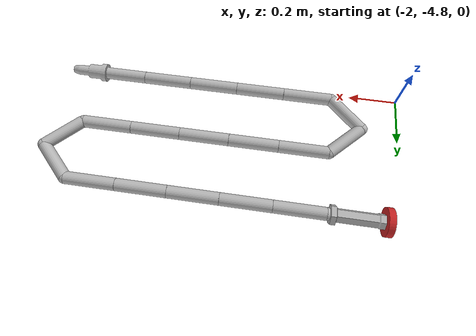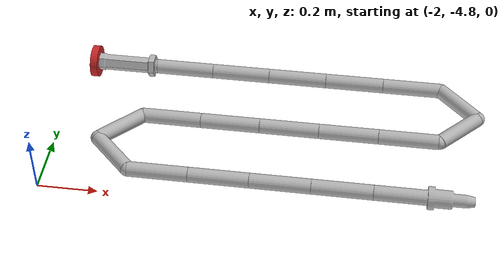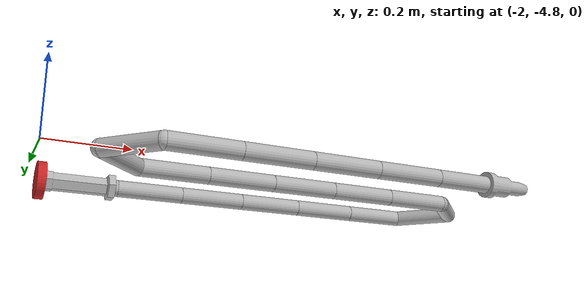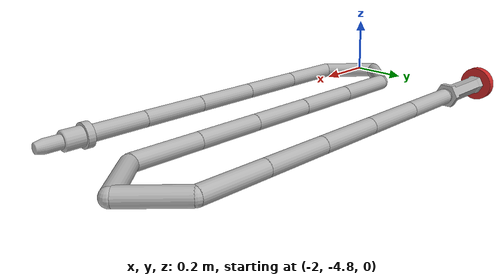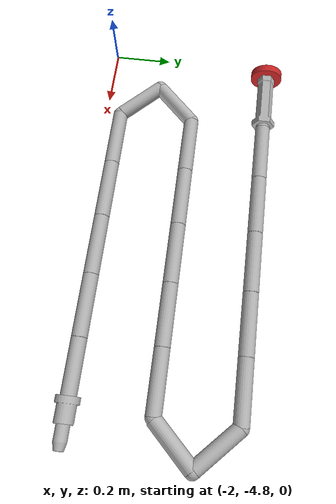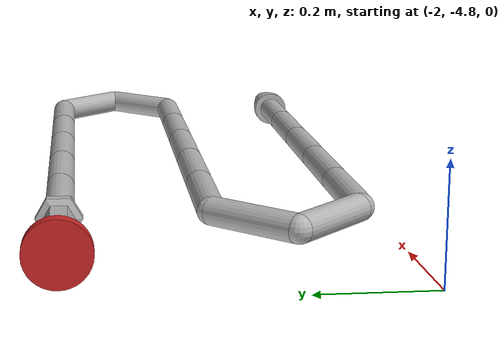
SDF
<?xml version="1.0" ?>
<sdf version="1.5">
  <model name="fire_hose_long_curled">
    <pose>-1.81 -4.23 0.055 0 0 0</pose>
    <link name="coupling">
      <inertial>
        <pose>-0.07 0 0.0 0 0 0</pose>
        <mass>0.1</mass>
        <inertia>
          <ixx>0.01</ixx>
          <ixy>0</ixy>
          <ixz>0</ixz>
          <iyy>0.01</iyy>
          <iyz>0</iyz>
          <izz>0.01</izz>
        </inertia>
      </inertial>
      <collision name="coupling_collision">
        <pose>-0.01 0 0 0 -1.570790 0</pose>
        <geometry>
          <mesh>
            <scale>0.4 0.4 0.8</scale>
            <uri>model://fire_hose_long_curled/meshes/coupling_hexagon.dae</uri>
          </mesh>
        </geometry>
        <surface>
          <friction>
            <ode>
              <mu>1.0</mu>
              <mu2>1.0</mu2>
            </ode>
          </friction>
        </surface>
      </collision>
      <visual name="coupling_vis">
        <pose>-0.01 0 0 0 -1.570790 0</pose>
        <geometry>
          <mesh>
            <scale>0.4 0.4 0.8</scale>
            <uri>model://fire_hose_long_curled/meshes/coupling_hexagon.dae</uri>
          </mesh>
        </geometry>
        <material>
          <script>
            <uri>model://fire_hose_long_curled/materials/scripts</uri>
            <uri>model://fire_hose_long_curled/materials/textures</uri>
            <name>fire_hose_long_curled/fire_hose_coupling</name>
          </script>
        </material>
      </visual>
      <visual name="attachment_vis">
        <pose>-0.1225 0 0 0 -1.570790 0</pose>
        <geometry>
          <mesh>
            <uri>model://fire_hose_long_curled/meshes/connector.dae</uri>
          </mesh>
        </geometry>
        <material>
          <script>
            <uri>model://fire_hose_long_curled/materials/scripts</uri>
            <uri>model://fire_hose_long_curled/materials/textures</uri>
            <name>fire_hose_long_curled/fire_hose_red_coupling</name>
          </script>
        </material>
      </visual>
      <collision name="attachment_col">
        <pose>-0.1225 0 0 0 -1.570790 0</pose>
        <geometry>
          <cylinder>
            <length>0.025</length>
            <radius>0.055</radius>
          </cylinder>
        </geometry>
        <surface>
          <contact>
            <ode>
              <min_depth>0.005</min_depth>
            </ode>
          </contact>
          <friction>
            <ode>
              <mu>1.0</mu>
              <mu2>1.0</mu2>
            </ode>
          </friction>
        </surface>
      </collision>
    </link>
    <link name="link_00">
      <gravity>true</gravity>
      <pose>0.1 0 0 0 0 0</pose>
      <inertial>
        <mass>0.1</mass>
        <pose>0.1 0 0 0 0 0</pose>
        <inertia>
          <ixx>0.01</ixx>
          <ixy>0</ixy>
          <ixz>0</ixz>
          <iyy>0.01</iyy>
          <iyz>0</iyz>
          <izz>0.01</izz>
        </inertia>
      </inertial>
      <visual name="sphere">
        <geometry>
          <sphere>
            <radius>0.025</radius>
          </sphere>
        </geometry>
        <material>
          <script>
            <uri>model://fire_hose_long_curled/materials/scripts</uri>
            <uri>model://fire_hose_long_curled/materials/textures</uri>
            <name>fire_hose_long_curled/fire_hose_canvas</name>
          </script>
        </material>
      </visual>
    </link>
    <link name="link_01">
      <gravity>true</gravity>
      <pose>0.1 0 0 0 0 0</pose>
      <inertial>
        <mass>0.1</mass>
        <pose>0.1 0 0 0 0 0</pose>
        <inertia>
          <ixx>0.01</ixx>
          <ixy>0</ixy>
          <ixz>0</ixz>
          <iyy>0.01</iyy>
          <iyz>0</iyz>
          <izz>0.01</izz>
        </inertia>
      </inertial>
      <collision name="collision">
        <pose>0.1 0 0 0 1.570790 0</pose>
        <geometry>
          <cylinder>
            <length>0.2</length>
            <radius>0.025</radius>
          </cylinder>
        </geometry>
        <surface>
          <contact>
            <ode>
              <min_depth>0.005</min_depth>
            </ode>
          </contact>
          <friction>
            <ode>
              <mu>1.0</mu>
              <mu2>1.0</mu2>
            </ode>
          </friction>
        </surface>
      </collision>
      <visual name="visual">
        <pose>0.1 0 0 0 1.570790 0</pose>
        <geometry>
          <cylinder>
            <length>0.2</length>
            <radius>0.025</radius>
          </cylinder>
        </geometry>
        <material>
          <script>
            <uri>model://fire_hose_long_curled/materials/scripts</uri>
            <uri>model://fire_hose_long_curled/materials/textures</uri>
            <name>fire_hose_long_curled/fire_hose_canvas</name>
          </script>
        </material>
      </visual>
    </link>
    <link name="link_02">
      <gravity>true</gravity>
      <pose>0.3 0 0 0 0 0</pose>
      <inertial>
        <mass>0.1</mass>
        <pose>0.1 0 0 0 0 0</pose>
        <inertia>
          <ixx>0.01</ixx>
          <ixy>0</ixy>
          <ixz>0</ixz>
          <iyy>0.01</iyy>
          <iyz>0</iyz>
          <izz>0.01</izz>
        </inertia>
      </inertial>
      <collision name="collision">
        <pose>0.1 0 0 0 1.570790 0</pose>
        <geometry>
          <cylinder>
            <length>0.2</length>
            <radius>0.025</radius>
          </cylinder>
        </geometry>
        <surface>
          <contact>
            <ode>
              <min_depth>0.005</min_depth>
            </ode>
          </contact>
          <friction>
            <ode>
              <mu>1.0</mu>
              <mu2>1.0</mu2>
            </ode>
          </friction>
        </surface>
      </collision>
      <visual name="visual">
        <pose>0.1 0 0 0 1.570790 0</pose>
        <geometry>
          <cylinder>
            <length>0.2</length>
            <radius>0.025</radius>
          </cylinder>
        </geometry>
        <material>
          <script>
            <uri>model://fire_hose_long_curled/materials/scripts</uri>
            <uri>model://fire_hose_long_curled/materials/textures</uri>
            <name>fire_hose_long_curled/fire_hose_canvas</name>
          </script>
        </material>
      </visual>
      <visual name="sphere">
        <geometry>
          <sphere>
            <radius>0.025</radius>
          </sphere>
        </geometry>
        <material>
          <script>
            <uri>model://fire_hose_long_curled/materials/scripts</uri>
            <uri>model://fire_hose_long_curled/materials/textures</uri>
            <name>fire_hose_long_curled/fire_hose_canvas</name>
          </script>
        </material>
      </visual>
    </link>
    <link name="link_03">
      <gravity>true</gravity>
      <pose>0.5 0 0 0 0 0</pose>
      <inertial>
        <mass>0.1</mass>
        <pose>0.1 0 0 0 0 0</pose>
        <inertia>
          <ixx>0.01</ixx>
          <ixy>0</ixy>
          <ixz>0</ixz>
          <iyy>0.01</iyy>
          <iyz>0</iyz>
          <izz>0.01</izz>
        </inertia>
      </inertial>
      <collision name="collision">
        <pose>0.1 0 0 0 1.570790 0</pose>
        <geometry>
          <cylinder>
            <length>0.2</length>
            <radius>0.025</radius>
          </cylinder>
        </geometry>
        <surface>
          <contact>
            <ode>
              <min_depth>0.005</min_depth>
            </ode>
          </contact>
          <friction>
            <ode>
              <mu>1.0</mu>
              <mu2>1.0</mu2>
            </ode>
          </friction>
        </surface>
      </collision>
      <visual name="visual">
        <pose>0.1 0 0 0 1.570790 0</pose>
        <geometry>
          <cylinder>
            <length>0.2</length>
            <radius>0.025</radius>
          </cylinder>
        </geometry>
        <material>
          <script>
            <uri>model://fire_hose_long_curled/materials/scripts</uri>
            <uri>model://fire_hose_long_curled/materials/textures</uri>
            <name>fire_hose_long_curled/fire_hose_canvas</name>
          </script>
        </material>
      </visual>
      <visual name="sphere">
        <geometry>
          <sphere>
            <radius>0.025</radius>
          </sphere>
        </geometry>
        <material>
          <script>
            <uri>model://fire_hose_long_curled/materials/scripts</uri>
            <uri>model://fire_hose_long_curled/materials/textures</uri>
            <name>fire_hose_long_curled/fire_hose_canvas</name>
          </script>
        </material>
      </visual>
    </link>
    <link name="link_04">
      <gravity>true</gravity>
      <pose>0.7 0 0 0 0 0</pose>
      <inertial>
        <mass>0.1</mass>
        <pose>0.1 0 0 0 0 0</pose>
        <inertia>
          <ixx>0.01</ixx>
          <ixy>0</ixy>
          <ixz>0</ixz>
          <iyy>0.01</iyy>
          <iyz>0</iyz>
          <izz>0.01</izz>
        </inertia>
      </inertial>
      <collision name="collision">
        <pose>0.1 0 0 0 1.570790 0</pose>
        <geometry>
          <cylinder>
            <length>0.2</length>
            <radius>0.025</radius>
          </cylinder>
        </geometry>
        <surface>
          <contact>
            <ode>
              <min_depth>0.005</min_depth>
            </ode>
          </contact>
          <friction>
            <ode>
              <mu>1.0</mu>
              <mu2>1.0</mu2>
            </ode>
          </friction>
        </surface>
      </collision>
      <visual name="visual">
        <pose>0.1 0 0 0 1.570790 0</pose>
        <geometry>
          <cylinder>
            <length>0.2</length>
            <radius>0.025</radius>
          </cylinder>
        </geometry>
        <material>
          <script>
            <uri>model://fire_hose_long_curled/materials/scripts</uri>
            <uri>model://fire_hose_long_curled/materials/textures</uri>
            <name>fire_hose_long_curled/fire_hose_canvas</name>
          </script>
        </material>
      </visual>
      <visual name="sphere">
        <geometry>
          <sphere>
            <radius>0.025</radius>
          </sphere>
        </geometry>
        <material>
          <script>
            <uri>model://fire_hose_long_curled/materials/scripts</uri>
            <uri>model://fire_hose_long_curled/materials/textures</uri>
            <name>fire_hose_long_curled/fire_hose_canvas</name>
          </script>
        </material>
      </visual>
    </link>
    <link name="link_05">
      <gravity>true</gravity>
      <pose>0.9 0 0 0 0 0</pose>
      <inertial>
        <mass>0.1</mass>
        <pose>0.1 0 0 0 0 0</pose>
        <inertia>
          <ixx>0.01</ixx>
          <ixy>0</ixy>
          <ixz>0</ixz>
          <iyy>0.01</iyy>
          <iyz>0</iyz>
          <izz>0.01</izz>
        </inertia>
      </inertial>
      <collision name="collision">
        <pose>0.1 0 0 0 1.570790 0</pose>
        <geometry>
          <cylinder>
            <length>0.2</length>
            <radius>0.025</radius>
          </cylinder>
        </geometry>
        <surface>
          <contact>
            <ode>
              <min_depth>0.005</min_depth>
            </ode>
          </contact>
          <friction>
            <ode>
              <mu>1.0</mu>
              <mu2>1.0</mu2>
            </ode>
          </friction>
        </surface>
      </collision>
      <visual name="visual">
        <pose>0.1 0 0 0 1.570790 0</pose>
        <geometry>
          <cylinder>
            <length>0.2</length>
            <radius>0.025</radius>
          </cylinder>
        </geometry>
        <material>
          <script>
            <uri>model://fire_hose_long_curled/materials/scripts</uri>
            <uri>model://fire_hose_long_curled/materials/textures</uri>
            <name>fire_hose_long_curled/fire_hose_canvas</name>
          </script>
        </material>
      </visual>
      <visual name="sphere">
        <geometry>
          <sphere>
            <radius>0.025</radius>
          </sphere>
        </geometry>
        <material>
          <script>
            <uri>model://fire_hose_long_curled/materials/scripts</uri>
            <uri>model://fire_hose_long_curled/materials/textures</uri>
            <name>fire_hose_long_curled/fire_hose_canvas</name>
          </script>
        </material>
      </visual>
    </link>
    <link name="link_06">
      <gravity>true</gravity>
      <pose>1.1 0 0 0 0 -.785</pose>
      <inertial>
        <mass>0.1</mass>
        <pose>0.0875 0 0 0 0 0</pose>
        <inertia>
          <ixx>0.01</ixx>
          <ixy>0</ixy>
          <ixz>0</ixz>
          <iyy>0.01</iyy>
          <iyz>0</iyz>
          <izz>0.01</izz>
        </inertia>
      </inertial>
      <collision name="collision">
        <pose>0.0875 0 0 0 1.570790 0</pose>
        <geometry>
          <cylinder>
            <length>0.175</length>
            <radius>0.025</radius>
          </cylinder>
        </geometry>
        <surface>
          <contact>
            <ode>
              <min_depth>0.005</min_depth>
            </ode>
          </contact>
          <friction>
            <ode>
              <mu>1.0</mu>
              <mu2>1.0</mu2>
            </ode>
          </friction>
        </surface>
      </collision>
      <visual name="visual">
        <pose>0.0875 0 0 0 1.570790 0</pose>
        <geometry>
          <cylinder>
            <length>0.175</length>
            <radius>0.025</radius>
          </cylinder>
        </geometry>
        <material>
          <script>
            <uri>model://fire_hose_long_curled/materials/scripts</uri>
            <uri>model://fire_hose_long_curled/materials/textures</uri>
            <name>fire_hose_long_curled/fire_hose_canvas</name>
          </script>
        </material>
      </visual>
      <visual name="sphere">
        <geometry>
          <sphere>
            <radius>0.025</radius>
          </sphere>
        </geometry>
        <material>
          <script>
            <uri>model://fire_hose_long_curled/materials/scripts</uri>
            <uri>model://fire_hose_long_curled/materials/textures</uri>
            <name>fire_hose_long_curled/fire_hose_canvas</name>
          </script>
        </material>
      </visual>
    </link>
    <link name="link_07">
      <gravity>true</gravity>
      <pose>1.227 -.127 0 0 0 -2.3415</pose>
      <inertial>
        <mass>0.1</mass>
        <pose>0.0875 0 0 0 0 0</pose>
        <inertia>
          <ixx>0.01</ixx>
          <ixy>0</ixy>
          <ixz>0</ixz>
          <iyy>0.01</iyy>
          <iyz>0</iyz>
          <izz>0.01</izz>
        </inertia>
      </inertial>
      <collision name="collision">
        <pose>0.0875 0 0 0 1.570790 0</pose>
        <geometry>
          <cylinder>
            <length>0.175</length>
            <radius>0.025</radius>
          </cylinder>
        </geometry>
        <surface>
          <contact>
            <ode>
              <min_depth>0.005</min_depth>
            </ode>
          </contact>
          <friction>
            <ode>
              <mu>1.0</mu>
              <mu2>1.0</mu2>
            </ode>
          </friction>
        </surface>
      </collision>
      <visual name="visual">
        <pose>0.0875 0 0 0 1.570790 0</pose>
        <geometry>
          <cylinder>
            <length>0.175</length>
            <radius>0.025</radius>
          </cylinder>
        </geometry>
        <material>
          <script>
            <uri>model://fire_hose_long_curled/materials/scripts</uri>
            <uri>model://fire_hose_long_curled/materials/textures</uri>
            <name>fire_hose_long_curled/fire_hose_canvas</name>
          </script>
        </material>
      </visual>
      <visual name="sphere">
        <geometry>
          <sphere>
            <radius>0.025</radius>
          </sphere>
        </geometry>
        <material>
          <script>
            <uri>model://fire_hose_long_curled/materials/scripts</uri>
            <uri>model://fire_hose_long_curled/materials/textures</uri>
            <name>fire_hose_long_curled/fire_hose_canvas</name>
          </script>
        </material>
      </visual>
    </link>
    <link name="link_08">
      <gravity>true</gravity>
      <pose>1.1 -.254 0 0 0 -3.1415</pose>
      <inertial>
        <mass>0.1</mass>
        <pose>0.1 0 0 0 0 0</pose>
        <inertia>
          <ixx>0.01</ixx>
          <ixy>0</ixy>
          <ixz>0</ixz>
          <iyy>0.01</iyy>
          <iyz>0</iyz>
          <izz>0.01</izz>
        </inertia>
      </inertial>
      <collision name="collision">
        <pose>0.1 0 0 0 1.570790 0</pose>
        <geometry>
          <cylinder>
            <length>0.2</length>
            <radius>0.025</radius>
          </cylinder>
        </geometry>
        <surface>
          <contact>
            <ode>
              <min_depth>0.005</min_depth>
            </ode>
          </contact>
          <friction>
            <ode>
              <mu>1.0</mu>
              <mu2>1.0</mu2>
            </ode>
          </friction>
        </surface>
      </collision>
      <visual name="visual">
        <pose>0.1 0 0 0 1.570790 0</pose>
        <geometry>
          <cylinder>
            <length>0.2</length>
            <radius>0.025</radius>
          </cylinder>
        </geometry>
        <material>
          <script>
            <uri>model://fire_hose_long_curled/materials/scripts</uri>
            <uri>model://fire_hose_long_curled/materials/textures</uri>
            <name>fire_hose_long_curled/fire_hose_canvas</name>
          </script>
        </material>
      </visual>
      <visual name="sphere">
        <geometry>
          <sphere>
            <radius>0.025</radius>
          </sphere>
        </geometry>
        <material>
          <script>
            <uri>model://fire_hose_long_curled/materials/scripts</uri>
            <uri>model://fire_hose_long_curled/materials/textures</uri>
            <name>fire_hose_long_curled/fire_hose_canvas</name>
          </script>
        </material>
      </visual>
    </link>
    <link name="link_09">
      <gravity>true</gravity>
      <pose>0.9 -.254 0 0 0 -3.1415</pose>
      <inertial>
        <mass>0.1</mass>
        <pose>0.1 0 0 0 0 0</pose>
        <inertia>
          <ixx>0.01</ixx>
          <ixy>0</ixy>
          <ixz>0</ixz>
          <iyy>0.01</iyy>
          <iyz>0</iyz>
          <izz>0.01</izz>
        </inertia>
      </inertial>
      <collision name="collision">
        <pose>0.1 0 0 0 1.570790 0</pose>
        <geometry>
          <cylinder>
            <length>0.2</length>
            <radius>0.025</radius>
          </cylinder>
        </geometry>
        <surface>
          <contact>
            <ode>
              <min_depth>0.005</min_depth>
            </ode>
          </contact>
          <friction>
            <ode>
              <mu>1.0</mu>
              <mu2>1.0</mu2>
            </ode>
          </friction>
        </surface>
      </collision>
      <visual name="visual">
        <pose>0.1 0 0 0 1.570790 0</pose>
        <geometry>
          <cylinder>
            <length>0.2</length>
            <radius>0.025</radius>
          </cylinder>
        </geometry>
        <material>
          <script>
            <uri>model://fire_hose_long_curled/materials/scripts</uri>
            <uri>model://fire_hose_long_curled/materials/textures</uri>
            <name>fire_hose_long_curled/fire_hose_canvas</name>
          </script>
        </material>
      </visual>
      <visual name="sphere">
        <geometry>
          <sphere>
            <radius>0.025</radius>
          </sphere>
        </geometry>
        <material>
          <script>
            <uri>model://fire_hose_long_curled/materials/scripts</uri>
            <uri>model://fire_hose_long_curled/materials/textures</uri>
            <name>fire_hose_long_curled/fire_hose_canvas</name>
          </script>
        </material>
      </visual>
    </link>
    <link name="link_10">
      <gravity>true</gravity>
      <pose>0.7 -.254 0 0 0 -3.1415</pose>
      <inertial>
        <mass>0.1</mass>
        <pose>0.1 0 0 0 0 0</pose>
        <inertia>
          <ixx>0.01</ixx>
          <ixy>0</ixy>
          <ixz>0</ixz>
          <iyy>0.01</iyy>
          <iyz>0</iyz>
          <izz>0.01</izz>
        </inertia>
      </inertial>
      <collision name="collision">
        <pose>0.1 0 0 0 1.570790 0</pose>
        <geometry>
          <cylinder>
            <length>0.2</length>
            <radius>0.025</radius>
          </cylinder>
        </geometry>
        <surface>
          <contact>
            <ode>
              <min_depth>0.005</min_depth>
            </ode>
          </contact>
          <friction>
            <ode>
              <mu>1.0</mu>
              <mu2>1.0</mu2>
            </ode>
          </friction>
        </surface>
      </collision>
      <visual name="visual">
        <pose>0.1 0 0 0 1.570790 0</pose>
        <geometry>
          <cylinder>
            <length>0.2</length>
            <radius>0.025</radius>
          </cylinder>
        </geometry>
        <material>
          <script>
            <uri>model://fire_hose_long_curled/materials/scripts</uri>
            <uri>model://fire_hose_long_curled/materials/textures</uri>
            <name>fire_hose_long_curled/fire_hose_canvas</name>
          </script>
        </material>
      </visual>
      <visual name="sphere">
        <geometry>
          <sphere>
            <radius>0.025</radius>
          </sphere>
        </geometry>
        <material>
          <script>
            <uri>model://fire_hose_long_curled/materials/scripts</uri>
            <uri>model://fire_hose_long_curled/materials/textures</uri>
            <name>fire_hose_long_curled/fire_hose_canvas</name>
          </script>
        </material>
      </visual>
    </link>
    <link name="link_11">
      <gravity>true</gravity>
      <pose>0.5 -.254 0 0 0 -3.1415</pose>
      <inertial>
        <mass>0.1</mass>
        <pose>0.1 0 0 0 0 0</pose>
        <inertia>
          <ixx>0.01</ixx>
          <ixy>0</ixy>
          <ixz>0</ixz>
          <iyy>0.01</iyy>
          <iyz>0</iyz>
          <izz>0.01</izz>
        </inertia>
      </inertial>
      <collision name="collision">
        <pose>0.1 0 0 0 1.570790 0</pose>
        <geometry>
          <cylinder>
            <length>0.2</length>
            <radius>0.025</radius>
          </cylinder>
        </geometry>
        <surface>
          <contact>
            <ode>
              <min_depth>0.005</min_depth>
            </ode>
          </contact>
          <friction>
            <ode>
              <mu>1.0</mu>
              <mu2>1.0</mu2>
            </ode>
          </friction>
        </surface>
      </collision>
      <visual name="visual">
        <pose>0.1 0 0 0 1.570790 0</pose>
        <geometry>
          <cylinder>
            <length>0.2</length>
            <radius>0.025</radius>
          </cylinder>
        </geometry>
        <material>
          <script>
            <uri>model://fire_hose_long_curled/materials/scripts</uri>
            <uri>model://fire_hose_long_curled/materials/textures</uri>
            <name>fire_hose_long_curled/fire_hose_canvas</name>
          </script>
        </material>
      </visual>
      <visual name="sphere">
        <geometry>
          <sphere>
            <radius>0.025</radius>
          </sphere>
        </geometry>
        <material>
          <script>
            <uri>model://fire_hose_long_curled/materials/scripts</uri>
            <uri>model://fire_hose_long_curled/materials/textures</uri>
            <name>fire_hose_long_curled/fire_hose_canvas</name>
          </script>
        </material>
      </visual>
    </link>
    <link name="link_12">
      <gravity>true</gravity>
      <pose>0.3 -.254 0 0 0 -3.1415</pose>
      <inertial>
        <mass>0.1</mass>
        <pose>0.1 0 0 0 0 0</pose>
        <inertia>
          <ixx>0.01</ixx>
          <ixy>0</ixy>
          <ixz>0</ixz>
          <iyy>0.01</iyy>
          <iyz>0</iyz>
          <izz>0.01</izz>
        </inertia>
      </inertial>
      <collision name="collision">
        <pose>0.1 0 0 0 1.570790 0</pose>
        <geometry>
          <cylinder>
            <length>0.2</length>
            <radius>0.025</radius>
          </cylinder>
        </geometry>
        <surface>
          <contact>
            <ode>
              <min_depth>0.005</min_depth>
            </ode>
          </contact>
          <friction>
            <ode>
              <mu>1.0</mu>
              <mu2>1.0</mu2>
            </ode>
          </friction>
        </surface>
      </collision>
      <visual name="visual">
        <pose>0.1 0 0 0 1.570790 0</pose>
        <geometry>
          <cylinder>
            <length>0.2</length>
            <radius>0.025</radius>
          </cylinder>
        </geometry>
        <material>
          <script>
            <uri>model://fire_hose_long_curled/materials/scripts</uri>
            <uri>model://fire_hose_long_curled/materials/textures</uri>
            <name>fire_hose_long_curled/fire_hose_canvas</name>
          </script>
        </material>
      </visual>
      <visual name="sphere">
        <geometry>
          <sphere>
            <radius>0.025</radius>
          </sphere>
        </geometry>
        <material>
          <script>
            <uri>model://fire_hose_long_curled/materials/scripts</uri>
            <uri>model://fire_hose_long_curled/materials/textures</uri>
            <name>fire_hose_long_curled/fire_hose_canvas</name>
          </script>
        </material>
      </visual>
    </link>
    <link name="link_13">
      <gravity>true</gravity>
      <pose>0.1 -.254 0 0 0 -2.356</pose>
      <inertial>
        <mass>0.1</mass>
        <pose>0.0875 0 0 0 0 0</pose>
        <inertia>
          <ixx>0.01</ixx>
          <ixy>0</ixy>
          <ixz>0</ixz>
          <iyy>0.01</iyy>
          <iyz>0</iyz>
          <izz>0.01</izz>
        </inertia>
      </inertial>
      <collision name="collision">
        <pose>0.0875 0 0 0 1.570790 0</pose>
        <geometry>
          <cylinder>
            <length>0.175</length>
            <radius>0.025</radius>
          </cylinder>
        </geometry>
        <surface>
          <contact>
            <ode>
              <min_depth>0.005</min_depth>
            </ode>
          </contact>
          <friction>
            <ode>
              <mu>1.0</mu>
              <mu2>1.0</mu2>
            </ode>
          </friction>
        </surface>
      </collision>
      <visual name="visual">
        <pose>0.0875 0 0 0 1.570790 0</pose>
        <geometry>
          <cylinder>
            <length>0.175</length>
            <radius>0.025</radius>
          </cylinder>
        </geometry>
        <material>
          <script>
            <uri>model://fire_hose_long_curled/materials/scripts</uri>
            <uri>model://fire_hose_long_curled/materials/textures</uri>
            <name>fire_hose_long_curled/fire_hose_canvas</name>
          </script>
        </material>
      </visual>
      <visual name="sphere">
        <geometry>
          <sphere>
            <radius>0.025</radius>
          </sphere>
        </geometry>
        <material>
          <script>
            <uri>model://fire_hose_long_curled/materials/scripts</uri>
            <uri>model://fire_hose_long_curled/materials/textures</uri>
            <name>fire_hose_long_curled/fire_hose_canvas</name>
          </script>
        </material>
      </visual>
    </link>
    <link name="link_14">
      <gravity>true</gravity>
      <pose>-0.027 -.381 0 0 0 -.785</pose>
      <inertial>
        <mass>0.1</mass>
        <pose>0.0875 0 0 0 0 0</pose>
        <inertia>
          <ixx>0.01</ixx>
          <ixy>0</ixy>
          <ixz>0</ixz>
          <iyy>0.01</iyy>
          <iyz>0</iyz>
          <izz>0.01</izz>
        </inertia>
      </inertial>
      <collision name="collision">
        <pose>0.0875 0 0 0 1.570790 0</pose>
        <geometry>
          <cylinder>
            <length>0.175</length>
            <radius>0.025</radius>
          </cylinder>
        </geometry>
        <surface>
          <contact>
            <ode>
              <min_depth>0.005</min_depth>
            </ode>
          </contact>
          <friction>
            <ode>
              <mu>1.0</mu>
              <mu2>1.0</mu2>
            </ode>
          </friction>
        </surface>
      </collision>
      <visual name="visual">
        <pose>0.0875 0 0 0 1.570790 0</pose>
        <geometry>
          <cylinder>
            <length>0.175</length>
            <radius>0.025</radius>
          </cylinder>
        </geometry>
        <material>
          <script>
            <uri>model://fire_hose_long_curled/materials/scripts</uri>
            <uri>model://fire_hose_long_curled/materials/textures</uri>
            <name>fire_hose_long_curled/fire_hose_canvas</name>
          </script>
        </material>
      </visual>
      <visual name="sphere">
        <geometry>
          <sphere>
            <radius>0.025</radius>
          </sphere>
        </geometry>
        <material>
          <script>
            <uri>model://fire_hose_long_curled/materials/scripts</uri>
            <uri>model://fire_hose_long_curled/materials/textures</uri>
            <name>fire_hose_long_curled/fire_hose_canvas</name>
          </script>
        </material>
      </visual>
    </link>
    <link name="link_15">
      <gravity>true</gravity>
      <pose>0.1 -.508 0 0 0 0</pose>
      <inertial>
        <mass>0.1</mass>
        <pose>0.1 0 0 0 0 0</pose>
        <inertia>
          <ixx>0.01</ixx>
          <ixy>0</ixy>
          <ixz>0</ixz>
          <iyy>0.01</iyy>
          <iyz>0</iyz>
          <izz>0.01</izz>
        </inertia>
      </inertial>
      <collision name="collision">
        <pose>0.1 0 0 0 1.570790 0</pose>
        <geometry>
          <cylinder>
            <length>0.2</length>
            <radius>0.025</radius>
          </cylinder>
        </geometry>
        <surface>
          <contact>
            <ode>
              <min_depth>0.005</min_depth>
            </ode>
          </contact>
          <friction>
            <ode>
              <mu>1.0</mu>
              <mu2>1.0</mu2>
            </ode>
          </friction>
        </surface>
      </collision>
      <visual name="visual">
        <pose>0.1 0 0 0 1.570790 0</pose>
        <geometry>
          <cylinder>
            <length>0.2</length>
            <radius>0.025</radius>
          </cylinder>
        </geometry>
        <material>
          <script>
            <uri>model://fire_hose_long_curled/materials/scripts</uri>
            <uri>model://fire_hose_long_curled/materials/textures</uri>
            <name>fire_hose_long_curled/fire_hose_canvas</name>
          </script>
        </material>
      </visual>
      <visual name="sphere">
        <geometry>
          <sphere>
            <radius>0.025</radius>
          </sphere>
        </geometry>
        <material>
          <script>
            <uri>model://fire_hose_long_curled/materials/scripts</uri>
            <uri>model://fire_hose_long_curled/materials/textures</uri>
            <name>fire_hose_long_curled/fire_hose_canvas</name>
          </script>
        </material>
      </visual>
    </link>
    <link name="link_16">
      <gravity>true</gravity>
      <pose>0.3 -.508 0 0 0 0</pose>
      <inertial>
        <mass>0.1</mass>
        <pose>0.1 0 0 0 0 0</pose>
        <inertia>
          <ixx>0.01</ixx>
          <ixy>0</ixy>
          <ixz>0</ixz>
          <iyy>0.01</iyy>
          <iyz>0</iyz>
          <izz>0.01</izz>
        </inertia>
      </inertial>
      <collision name="collision">
        <pose>0.1 0 0 0 1.570790 0</pose>
        <geometry>
          <cylinder>
            <length>0.2</length>
            <radius>0.025</radius>
          </cylinder>
        </geometry>
        <surface>
          <contact>
            <ode>
              <min_depth>0.005</min_depth>
            </ode>
          </contact>
          <friction>
            <ode>
              <mu>1.0</mu>
              <mu2>1.0</mu2>
            </ode>
          </friction>
        </surface>
      </collision>
      <visual name="visual">
        <pose>0.1 0 0 0 1.570790 0</pose>
        <geometry>
          <cylinder>
            <length>0.2</length>
            <radius>0.025</radius>
          </cylinder>
        </geometry>
        <material>
          <script>
            <uri>model://fire_hose_long_curled/materials/scripts</uri>
            <uri>model://fire_hose_long_curled/materials/textures</uri>
            <name>fire_hose_long_curled/fire_hose_canvas</name>
          </script>
        </material>
      </visual>
      <visual name="sphere">
        <geometry>
          <sphere>
            <radius>0.025</radius>
          </sphere>
        </geometry>
        <material>
          <script>
            <uri>model://fire_hose_long_curled/materials/scripts</uri>
            <uri>model://fire_hose_long_curled/materials/textures</uri>
            <name>fire_hose_long_curled/fire_hose_canvas</name>
          </script>
        </material>
      </visual>
    </link>
    <link name="link_17">
      <gravity>true</gravity>
      <pose>0.5 -.508 0 0 0 0</pose>
      <inertial>
        <mass>0.1</mass>
        <pose>0.1 0 0 0 0 0</pose>
        <inertia>
          <ixx>0.01</ixx>
          <ixy>0</ixy>
          <ixz>0</ixz>
          <iyy>0.01</iyy>
          <iyz>0</iyz>
          <izz>0.01</izz>
        </inertia>
      </inertial>
      <collision name="collision">
        <pose>0.1 0 0 0 1.570790 0</pose>
        <geometry>
          <cylinder>
            <length>0.2</length>
            <radius>0.025</radius>
          </cylinder>
        </geometry>
        <surface>
          <contact>
            <ode>
              <min_depth>0.005</min_depth>
            </ode>
          </contact>
          <friction>
            <ode>
              <mu>1.0</mu>
              <mu2>1.0</mu2>
            </ode>
          </friction>
        </surface>
      </collision>
      <visual name="visual">
        <pose>0.1 0 0 0 1.570790 0</pose>
        <geometry>
          <cylinder>
            <length>0.2</length>
            <radius>0.025</radius>
          </cylinder>
        </geometry>
        <material>
          <script>
            <uri>model://fire_hose_long_curled/materials/scripts</uri>
            <uri>model://fire_hose_long_curled/materials/textures</uri>
            <name>fire_hose_long_curled/fire_hose_canvas</name>
          </script>
        </material>
      </visual>
      <visual name="sphere">
        <geometry>
          <sphere>
            <radius>0.025</radius>
          </sphere>
        </geometry>
        <material>
          <script>
            <uri>model://fire_hose_long_curled/materials/scripts</uri>
            <uri>model://fire_hose_long_curled/materials/textures</uri>
            <name>fire_hose_long_curled/fire_hose_canvas</name>
          </script>
        </material>
      </visual>
    </link>
    <link name="link_18">
      <gravity>true</gravity>
      <pose>0.7 -.508 0 0 0 0</pose>
      <inertial>
        <mass>0.1</mass>
        <pose>0.1 0 0 0 0 0</pose>
        <inertia>
          <ixx>0.01</ixx>
          <ixy>0</ixy>
          <ixz>0</ixz>
          <iyy>0.01</iyy>
          <iyz>0</iyz>
          <izz>0.01</izz>
        </inertia>
      </inertial>
      <collision name="collision">
        <pose>0.1 0 0 0 1.570790 0</pose>
        <geometry>
          <cylinder>
            <length>0.2</length>
            <radius>0.025</radius>
          </cylinder>
        </geometry>
        <surface>
          <contact>
            <ode>
              <min_depth>0.005</min_depth>
            </ode>
          </contact>
          <friction>
            <ode>
              <mu>1.0</mu>
              <mu2>1.0</mu2>
            </ode>
          </friction>
        </surface>
      </collision>
      <visual name="visual">
        <pose>0.1 0 0 0 1.570790 0</pose>
        <geometry>
          <cylinder>
            <length>0.2</length>
            <radius>0.025</radius>
          </cylinder>
        </geometry>
        <material>
          <script>
            <uri>model://fire_hose_long_curled/materials/scripts</uri>
            <uri>model://fire_hose_long_curled/materials/textures</uri>
            <name>fire_hose_long_curled/fire_hose_canvas</name>
          </script>
        </material>
      </visual>
      <visual name="sphere">
        <geometry>
          <sphere>
            <radius>0.025</radius>
          </sphere>
        </geometry>
        <material>
          <script>
            <uri>model://fire_hose_long_curled/materials/scripts</uri>
            <uri>model://fire_hose_long_curled/materials/textures</uri>
            <name>fire_hose_long_curled/fire_hose_canvas</name>
          </script>
        </material>
      </visual>
    </link>
    <link name="link_19">
      <gravity>true</gravity>
      <pose>0.9 -.508 0 0 0 0</pose>
      <inertial>
        <mass>0.1</mass>
        <pose>0.1 0 0 0 0 0</pose>
        <inertia>
          <ixx>0.01</ixx>
          <ixy>0</ixy>
          <ixz>0</ixz>
          <iyy>0.01</iyy>
          <iyz>0</iyz>
          <izz>0.01</izz>
        </inertia>
      </inertial>
      <collision name="collision">
        <pose>0.1 0 0 0 1.570790 0</pose>
        <geometry>
          <cylinder>
            <length>0.2</length>
            <radius>0.025</radius>
          </cylinder>
        </geometry>
        <surface>
          <contact>
            <ode>
              <min_depth>0.005</min_depth>
            </ode>
          </contact>
          <friction>
            <ode>
              <mu>1.0</mu>
              <mu2>1.0</mu2>
            </ode>
          </friction>
        </surface>
      </collision>
      <visual name="visual">
        <pose>0.1 0 0 0 1.570790 0</pose>
        <geometry>
          <cylinder>
            <length>0.2</length>
            <radius>0.025</radius>
          </cylinder>
        </geometry>
        <material>
          <script>
            <uri>model://fire_hose_long_curled/materials/scripts</uri>
            <uri>model://fire_hose_long_curled/materials/textures</uri>
            <name>fire_hose_long_curled/fire_hose_canvas</name>
          </script>
        </material>
      </visual>
      <visual name="sphere">
        <geometry>
          <sphere>
            <radius>0.025</radius>
          </sphere>
        </geometry>
        <material>
          <script>
            <uri>model://fire_hose_long_curled/materials/scripts</uri>
            <uri>model://fire_hose_long_curled/materials/textures</uri>
            <name>fire_hose_long_curled/fire_hose_canvas</name>
          </script>
        </material>
      </visual>
    </link>
    <link name="nozzle">
      <pose>1.10 -.508 0 0 0 3.1415</pose>
      <inertial>
        <mass>0.1</mass>
        <inertia>
          <ixx>0.01</ixx>
          <ixy>0</ixy>
          <ixz>0</ixz>
          <iyy>0.01</iyy>
          <iyz>0</iyz>
          <izz>0.01</izz>
        </inertia>
      </inertial>
      <collision name="nozzle_collision">
        <geometry>
          <mesh>
            <scale>1.0 0.5 0.5</scale>
            <uri>model://fire_hose_long_curled/meshes/nozzle.stl</uri>
          </mesh>
        </geometry>
        <surface>
          <contact>
            <ode>
              <min_depth>0.005</min_depth>
            </ode>
          </contact>
          <friction>
            <ode>
              <mu>1.0</mu>
              <mu2>1.0</mu2>
            </ode>
          </friction>
        </surface>
      </collision>
      <visual name="nozzle_vis">
        <geometry>
          <mesh>
            <scale>1.0 0.5 0.5</scale>
            <uri>model://fire_hose_long_curled/meshes/nozzle.stl</uri>
          </mesh>
        </geometry>
      </visual>
    </link>
    <joint name="joint_00" type="revolute">
      <parent>coupling</parent>
      <child>link_00</child>
      <axis>
        <xyz>1 0 0</xyz>
        <dynamics>
          <damping>1.0</damping>
        </dynamics>
        <use_parent_model_frame>true</use_parent_model_frame>
      </axis>
      <physics>
        <ode>
          <cfm_damping>1</cfm_damping>
        </ode>
      </physics>
    </joint>
    <joint name="joint_01" type="universal">
      <child>link_01</child>
      <parent>link_00</parent>
      <axis>
        <xyz>0 1 0</xyz>
        <limit>
          <lower>-1.57</lower>
          <upper>1.57</upper>
        </limit>
        <dynamics>
          <damping>1.0</damping>
        </dynamics>
        <use_parent_model_frame>true</use_parent_model_frame>
      </axis>
      <axis2>
        <xyz>0 0 1</xyz>
        <limit>
          <lower>-1.57</lower>
          <upper>1.57</upper>
        </limit>
        <dynamics>
          <damping>1.0</damping>
        </dynamics>
        <use_parent_model_frame>true</use_parent_model_frame>
      </axis2>
      <physics>
        <ode>
          <cfm_damping>1</cfm_damping>
        </ode>
      </physics>
    </joint>
    <joint name="joint_02" type="universal">
      <child>link_02</child>
      <parent>link_01</parent>
      <axis>
        <xyz>0 1 0</xyz>
        <limit>
          <lower>-1.57</lower>
          <upper>1.57</upper>
        </limit>
        <dynamics>
          <damping>1.0</damping>
        </dynamics>
        <use_parent_model_frame>true</use_parent_model_frame>
      </axis>
      <axis2>
        <xyz>0 0 1</xyz>
        <limit>
          <lower>-1.57</lower>
          <upper>1.57</upper>
        </limit>
        <dynamics>
          <damping>1.0</damping>
        </dynamics>
        <use_parent_model_frame>true</use_parent_model_frame>
      </axis2>
      <physics>
        <ode>
          <cfm_damping>1</cfm_damping>
        </ode>
      </physics>
    </joint>
    <joint name="joint_03" type="universal">
      <child>link_03</child>
      <parent>link_02</parent>
      <axis>
        <xyz>0 1 0</xyz>
        <limit>
          <lower>-1.57</lower>
          <upper>1.57</upper>
        </limit>
        <dynamics>
          <damping>1.0</damping>
        </dynamics>
        <use_parent_model_frame>true</use_parent_model_frame>
      </axis>
      <axis2>
        <xyz>0 0 1</xyz>
        <limit>
          <lower>-1.57</lower>
          <upper>1.57</upper>
        </limit>
        <dynamics>
          <damping>1.0</damping>
        </dynamics>
        <use_parent_model_frame>true</use_parent_model_frame>
      </axis2>
      <physics>
        <ode>
          <cfm_damping>1</cfm_damping>
        </ode>
      </physics>
    </joint>
    <joint name="joint_04" type="universal">
      <child>link_04</child>
      <parent>link_03</parent>
      <axis>
        <xyz>0 1 0</xyz>
        <limit>
          <lower>-1.57</lower>
          <upper>1.57</upper>
        </limit>
        <dynamics>
          <damping>1.0</damping>
        </dynamics>
        <use_parent_model_frame>true</use_parent_model_frame>
      </axis>
      <axis2>
        <xyz>0 0 1</xyz>
        <limit>
          <lower>-1.57</lower>
          <upper>1.57</upper>
        </limit>
        <dynamics>
          <damping>1.0</damping>
        </dynamics>
        <use_parent_model_frame>true</use_parent_model_frame>
      </axis2>
      <physics>
        <ode>
          <cfm_damping>1</cfm_damping>
        </ode>
      </physics>
    </joint>
    <joint name="joint_05" type="universal">
      <child>link_05</child>
      <parent>link_04</parent>
      <axis>
        <xyz>0 1 0</xyz>
        <limit>
          <lower>-1.57</lower>
          <upper>1.57</upper>
        </limit>
        <dynamics>
          <damping>1.0</damping>
        </dynamics>
        <use_parent_model_frame>true</use_parent_model_frame>
      </axis>
      <axis2>
        <xyz>0 0 1</xyz>
        <limit>
          <lower>-1.57</lower>
          <upper>1.57</upper>
        </limit>
        <dynamics>
          <damping>1.0</damping>
        </dynamics>
        <use_parent_model_frame>true</use_parent_model_frame>
      </axis2>
      <physics>
        <ode>
          <cfm_damping>1</cfm_damping>
        </ode>
      </physics>
    </joint>
    <joint name="joint_06" type="universal">
      <child>link_06</child>
      <parent>link_05</parent>
      <axis>
        <xyz>0 0 1</xyz>
        <limit>
          <lower>-0.72</lower>
          <upper>2.35</upper>
        </limit>
        <dynamics>
          <damping>1.0</damping>
        </dynamics>
        <use_parent_model_frame>true</use_parent_model_frame>
      </axis>
      <axis2>
        <xyz>1 1 0</xyz>
        <limit>
          <lower>-1.57</lower>
          <upper>1.57</upper>
        </limit>
        <dynamics>
          <damping>1.0</damping>
        </dynamics>
        <use_parent_model_frame>true</use_parent_model_frame>
      </axis2>
      <physics>
        <ode>
          <cfm_damping>1</cfm_damping>
        </ode>
      </physics>
    </joint>
    <joint name="joint_07" type="universal">
      <child>link_07</child>
      <parent>link_06</parent>
      <axis>
        <xyz>0 0 1</xyz>
        <limit>
          <lower>-0.0</lower>
          <upper>3.00</upper>
        </limit>
        <dynamics>
          <damping>1.0</damping>
        </dynamics>
        <use_parent_model_frame>true</use_parent_model_frame>
      </axis>
      <axis2>
        <xyz>-1 1 0</xyz>
        <limit>
          <lower>-1.57</lower>
          <upper>1.57</upper>
        </limit>
        <dynamics>
          <damping>1.0</damping>
        </dynamics>
        <use_parent_model_frame>true</use_parent_model_frame>
      </axis2>
      <physics>
        <ode>
          <cfm_damping>1</cfm_damping>
        </ode>
      </physics>
    </joint>
    <joint name="joint_08" type="universal">
      <child>link_08</child>
      <parent>link_07</parent>
      <axis>
        <xyz>0 1 0</xyz>
        <limit>
          <lower>-1.57</lower>
          <upper>1.57</upper>
        </limit>
        <dynamics>
          <damping>1.0</damping>
        </dynamics>
        <use_parent_model_frame>true</use_parent_model_frame>
      </axis>
      <axis2>
        <xyz>0 0 1</xyz>
        <limit>
          <lower>-0.72</lower>
          <upper>2.35</upper>
        </limit>
        <dynamics>
          <damping>1.0</damping>
        </dynamics>
        <use_parent_model_frame>true</use_parent_model_frame>
      </axis2>
      <physics>
        <ode>
          <cfm_damping>1</cfm_damping>
        </ode>
      </physics>
    </joint>
    <joint name="joint_09" type="universal">
      <child>link_09</child>
      <parent>link_08</parent>
      <axis>
        <xyz>0 1 0</xyz>
        <limit>
          <lower>-1.57</lower>
          <upper>1.57</upper>
        </limit>
        <dynamics>
          <damping>1.0</damping>
        </dynamics>
        <use_parent_model_frame>true</use_parent_model_frame>
      </axis>
      <axis2>
        <xyz>0 0 1</xyz>
        <limit>
          <lower>-1.57</lower>
          <upper>1.57</upper>
        </limit>
        <dynamics>
          <damping>1.0</damping>
        </dynamics>
        <use_parent_model_frame>true</use_parent_model_frame>
      </axis2>
      <physics>
        <ode>
          <cfm_damping>1</cfm_damping>
        </ode>
      </physics>
    </joint>
    <joint name="joint_10" type="universal">
      <child>link_10</child>
      <parent>link_09</parent>
      <axis>
        <xyz>0 1 0</xyz>
        <limit>
          <lower>-1.57</lower>
          <upper>1.57</upper>
        </limit>
        <dynamics>
          <damping>1.0</damping>
        </dynamics>
        <use_parent_model_frame>true</use_parent_model_frame>
      </axis>
      <axis2>
        <xyz>0 0 1</xyz>
        <limit>
          <lower>-1.57</lower>
          <upper>1.57</upper>
        </limit>
        <dynamics>
          <damping>1.0</damping>
        </dynamics>
        <use_parent_model_frame>true</use_parent_model_frame>
      </axis2>
      <physics>
        <ode>
          <cfm_damping>1</cfm_damping>
        </ode>
      </physics>
    </joint>
    <joint name="joint_11" type="universal">
      <child>link_11</child>
      <parent>link_10</parent>
      <axis>
        <xyz>0 1 0</xyz>
        <limit>
          <lower>-1.57</lower>
          <upper>1.57</upper>
        </limit>
        <dynamics>
          <damping>1.0</damping>
        </dynamics>
        <use_parent_model_frame>true</use_parent_model_frame>
      </axis>
      <axis2>
        <xyz>0 0 1</xyz>
        <limit>
          <lower>-1.57</lower>
          <upper>1.57</upper>
        </limit>
        <dynamics>
          <damping>1.0</damping>
        </dynamics>
        <use_parent_model_frame>true</use_parent_model_frame>
      </axis2>
      <physics>
        <ode>
          <cfm_damping>1</cfm_damping>
        </ode>
      </physics>
    </joint>
    <joint name="joint_12" type="universal">
      <child>link_12</child>
      <parent>link_11</parent>
      <axis>
        <xyz>0 1 0</xyz>
        <limit>
          <lower>-1.57</lower>
          <upper>1.57</upper>
        </limit>
        <dynamics>
          <damping>1.0</damping>
        </dynamics>
        <use_parent_model_frame>true</use_parent_model_frame>
      </axis>
      <axis2>
        <xyz>0 0 1</xyz>
        <limit>
          <lower>-1.57</lower>
          <upper>1.57</upper>
        </limit>
        <dynamics>
          <damping>1.0</damping>
        </dynamics>
        <use_parent_model_frame>true</use_parent_model_frame>
      </axis2>
      <physics>
        <ode>
          <cfm_damping>1</cfm_damping>
        </ode>
      </physics>
    </joint>
    <joint name="joint_13" type="universal">
      <child>link_13</child>
      <parent>link_12</parent>
      <axis>
        <xyz>0 0 1</xyz>
        <limit>
          <lower>-2.35</lower>
          <upper>0.72</upper>
        </limit>
        <dynamics>
          <damping>1.0</damping>
        </dynamics>
        <use_parent_model_frame>true</use_parent_model_frame>
      </axis>
      <axis2>
        <xyz>-1 1 0</xyz>
        <limit>
          <lower>-1.57</lower>
          <upper>1.57</upper>
        </limit>
        <dynamics>
          <damping>1.0</damping>
        </dynamics>
        <use_parent_model_frame>true</use_parent_model_frame>
      </axis2>
      <physics>
        <ode>
          <cfm_damping>1</cfm_damping>
        </ode>
      </physics>
    </joint>
    <joint name="joint_14" type="universal">
      <child>link_14</child>
      <parent>link_13</parent>
      <axis>
        <xyz>0 0 1</xyz>
        <limit>
          <lower>-3.00</lower>
          <upper>0.0</upper>
        </limit>
        <dynamics>
          <damping>1.0</damping>
        </dynamics>
        <use_parent_model_frame>true</use_parent_model_frame>
      </axis>
      <axis2>
        <xyz>1 1 0</xyz>
        <limit>
          <lower>-1.57</lower>
          <upper>1.57</upper>
        </limit>
        <dynamics>
          <damping>1.0</damping>
        </dynamics>
        <use_parent_model_frame>true</use_parent_model_frame>
      </axis2>
      <physics>
        <ode>
          <cfm_damping>1</cfm_damping>
        </ode>
      </physics>
    </joint>
    <joint name="joint_15" type="universal">
      <child>link_15</child>
      <parent>link_14</parent>
      <axis>
        <xyz>0 0 1</xyz>
        <limit>
          <lower>-2.35</lower>
          <upper>0.72</upper>
        </limit>
        <dynamics>
          <damping>1.0</damping>
        </dynamics>
        <use_parent_model_frame>true</use_parent_model_frame>
      </axis>
      <axis2>
        <xyz>0 1 0</xyz>
        <limit>
          <lower>-1.57</lower>
          <upper>1.57</upper>
        </limit>
        <dynamics>
          <damping>1.0</damping>
        </dynamics>
        <use_parent_model_frame>true</use_parent_model_frame>
      </axis2>
      <physics>
        <ode>
          <cfm_damping>1</cfm_damping>
        </ode>
      </physics>
    </joint>
    <joint name="joint_16" type="universal">
      <child>link_16</child>
      <parent>link_15</parent>
      <axis>
        <xyz>0 1 0</xyz>
        <limit>
          <lower>-1.57</lower>
          <upper>1.57</upper>
        </limit>
        <dynamics>
          <damping>1.0</damping>
        </dynamics>
        <use_parent_model_frame>true</use_parent_model_frame>
      </axis>
      <axis2>
        <xyz>0 0 1</xyz>
        <limit>
          <lower>-1.57</lower>
          <upper>1.57</upper>
        </limit>
        <dynamics>
          <damping>1.0</damping>
        </dynamics>
        <use_parent_model_frame>true</use_parent_model_frame>
      </axis2>
      <physics>
        <ode>
          <cfm_damping>1</cfm_damping>
        </ode>
      </physics>
    </joint>
    <joint name="joint_17" type="universal">
      <child>link_17</child>
      <parent>link_16</parent>
      <axis>
        <xyz>0 1 0</xyz>
        <limit>
          <lower>-1.57</lower>
          <upper>1.57</upper>
        </limit>
        <dynamics>
          <damping>1.0</damping>
        </dynamics>
        <use_parent_model_frame>true</use_parent_model_frame>
      </axis>
      <axis2>
        <xyz>0 0 1</xyz>
        <limit>
          <lower>-1.57</lower>
          <upper>1.57</upper>
        </limit>
        <dynamics>
          <damping>1.0</damping>
        </dynamics>
        <use_parent_model_frame>true</use_parent_model_frame>
      </axis2>
      <physics>
        <ode>
          <cfm_damping>1</cfm_damping>
        </ode>
      </physics>
    </joint>
    <joint name="joint_18" type="universal">
      <child>link_18</child>
      <parent>link_17</parent>
      <axis>
        <xyz>0 1 0</xyz>
        <limit>
          <lower>-1.57</lower>
          <upper>1.57</upper>
        </limit>
        <dynamics>
          <damping>1.0</damping>
        </dynamics>
        <use_parent_model_frame>true</use_parent_model_frame>
      </axis>
      <axis2>
        <xyz>0 0 1</xyz>
        <limit>
          <lower>-1.57</lower>
          <upper>1.57</upper>
        </limit>
        <dynamics>
          <damping>1.0</damping>
        </dynamics>
        <use_parent_model_frame>true</use_parent_model_frame>
      </axis2>
      <physics>
        <ode>
          <cfm_damping>1</cfm_damping>
        </ode>
      </physics>
    </joint>
    <joint name="joint_19" type="universal">
      <child>link_19</child>
      <parent>link_18</parent>
      <axis>
        <xyz>0 1 0</xyz>
        <limit>
          <lower>-1.57</lower>
          <upper>1.57</upper>
        </limit>
        <dynamics>
          <damping>1.0</damping>
        </dynamics>
        <use_parent_model_frame>true</use_parent_model_frame>
      </axis>
      <axis2>
        <xyz>0 0 1</xyz>
        <limit>
          <lower>-1.57</lower>
          <upper>1.57</upper>
        </limit>
        <dynamics>
          <damping>1.0</damping>
        </dynamics>
        <use_parent_model_frame>true</use_parent_model_frame>
      </axis2>
      <physics>
        <ode>
          <cfm_damping>1</cfm_damping>
        </ode>
      </physics>
    </joint>
    <joint name="joint_20" type="universal">
      <child>nozzle</child>
      <parent>link_19</parent>
      <axis>
        <xyz>0 1 0</xyz>
        <limit>
          <lower>-1.57</lower>
          <upper>1.57</upper>
        </limit>
        <dynamics>
          <damping>1.0</damping>
        </dynamics>
        <use_parent_model_frame>true</use_parent_model_frame>
      </axis>
      <axis2>
        <xyz>0 0 1</xyz>
        <limit>
          <lower>-1.57</lower>
          <upper>1.57</upper>
        </limit>
        <dynamics>
          <damping>1.0</damping>
        </dynamics>
        <use_parent_model_frame>true</use_parent_model_frame>
      </axis2>
      <physics>
        <ode>
          <cfm_damping>1</cfm_damping>
        </ode>
      </physics>
    </joint>
    <joint name="world" type="universal">
      <child>nozzle</child>
      <parent>world</parent>
      <axis>
        <xyz>0 1 0</xyz>
        <limit>
          <lower>-1.57</lower>
          <upper>1.57</upper>
        </limit>
        <dynamics>
          <damping>1.0</damping>
        </dynamics>
        <use_parent_model_frame>true</use_parent_model_frame>
      </axis>
      <axis2>
        <xyz>0 0 1</xyz>
        <limit>
          <lower>-1.57</lower>
          <upper>1.57</upper>
        </limit>
        <dynamics>
          <damping>1.0</damping>
        </dynamics>
        <use_parent_model_frame>true</use_parent_model_frame>
      </axis2>
      <physics>
        <ode>
          <cfm_damping>1</cfm_damping>
        </ode>
      </physics>
    </joint>
  </model>
</sdf>
